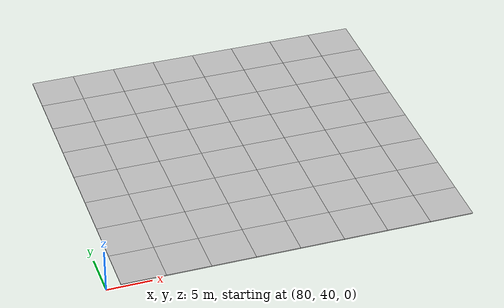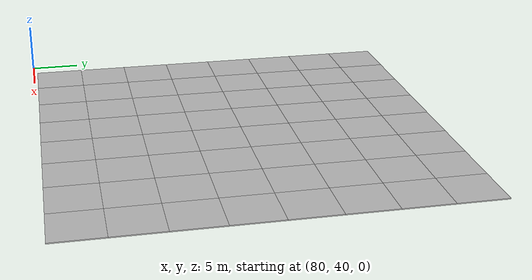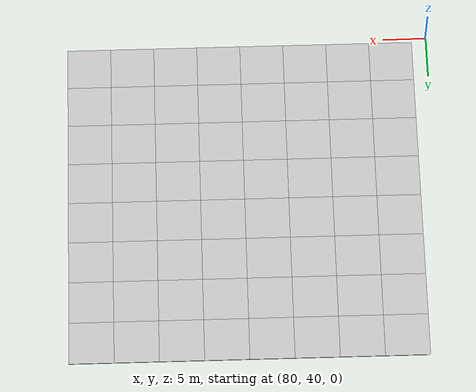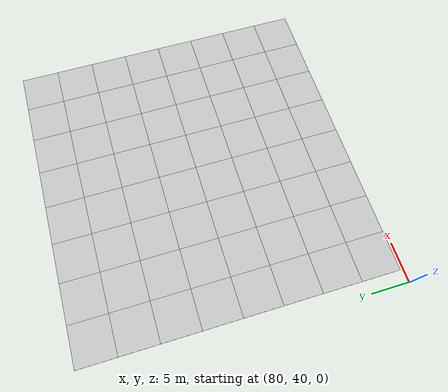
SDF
<sdf version="1.7">
 <world name="default">
  <model name="mud_plane_80x80_6">
   <model name="mud_plane_40x40_1">
    <model name="mud_plane_20x20">
     <model name="mud_plane">
      <static>1</static>
      <link name="link">
       <collision name="collision"><geometry><box><size>10 10 0.1</size></box></geometry></collision>
       <visual name="visual_1">
        <pose>-2.5 2.5 -0.05 0 -0 0</pose>
        <cast_shadows>0</cast_shadows>
        <geometry><box><size>5 5 0.1</size></box></geometry>
        <material>
         <script>
          <uri>model://mud_plane/materials/scripts</uri>
          <uri>model://mud_plane/materials/textures</uri>
          <name>vrc/mud</name>
         </script>
        </material>
       </visual>
       <visual name="visual_2">
        <pose>2.5 2.5 -0.05 0 -0 0</pose>
        <cast_shadows>0</cast_shadows>
        <geometry><box><size>5 5 0.1</size></box></geometry>
        <material>
         <script>
          <uri>model://mud_plane/materials/scripts</uri>
          <uri>model://mud_plane/materials/textures</uri>
          <name>vrc/mud</name>
         </script>
        </material>
       </visual>
       <visual name="visual_3">
        <pose>2.5 -2.5 -0.05 0 -0 0</pose>
        <cast_shadows>0</cast_shadows>
        <geometry><box><size>5 5 0.1</size></box></geometry>
        <material>
         <script>
          <uri>model://mud_plane/materials/scripts</uri>
          <uri>model://mud_plane/materials/textures</uri>
          <name>vrc/mud</name>
         </script>
        </material>
       </visual>
       <visual name="visual_4">
        <pose>-2.5 -2.5 -0.05 0 -0 0</pose>
        <cast_shadows>0</cast_shadows>
        <geometry><box><size>5 5 0.1</size></box></geometry>
        <material>
         <script>
          <uri>model://mud_plane/materials/scripts</uri>
          <uri>model://mud_plane/materials/textures</uri>
          <name>vrc/mud</name>
         </script>
        </material>
       </visual>
      </link>
      <pose>-4.99986 -4.99991 0 0 -0 0</pose>
     </model>
     <model name="mud_plane_0">
      <static>1</static>
      <link name="link">
       <collision name="collision"><geometry><box><size>10 10 0.1</size></box></geometry></collision>
       <visual name="visual_1">
        <pose>-2.5 2.5 -0.05 0 -0 0</pose>
        <cast_shadows>0</cast_shadows>
        <geometry><box><size>5 5 0.1</size></box></geometry>
        <material>
         <script>
          <uri>model://mud_plane/materials/scripts</uri>
          <uri>model://mud_plane/materials/textures</uri>
          <name>vrc/mud</name>
         </script>
        </material>
       </visual>
       <visual name="visual_2">
        <pose>2.5 2.5 -0.05 0 -0 0</pose>
        <cast_shadows>0</cast_shadows>
        <geometry><box><size>5 5 0.1</size></box></geometry>
        <material>
         <script>
          <uri>model://mud_plane/materials/scripts</uri>
          <uri>model://mud_plane/materials/textures</uri>
          <name>vrc/mud</name>
         </script>
        </material>
       </visual>
       <visual name="visual_3">
        <pose>2.5 -2.5 -0.05 0 -0 0</pose>
        <cast_shadows>0</cast_shadows>
        <geometry><box><size>5 5 0.1</size></box></geometry>
        <material>
         <script>
          <uri>model://mud_plane/materials/scripts</uri>
          <uri>model://mud_plane/materials/textures</uri>
          <name>vrc/mud</name>
         </script>
        </material>
       </visual>
       <visual name="visual_4">
        <pose>-2.5 -2.5 -0.05 0 -0 0</pose>
        <cast_shadows>0</cast_shadows>
        <geometry><box><size>5 5 0.1</size></box></geometry>
        <material>
         <script>
          <uri>model://mud_plane/materials/scripts</uri>
          <uri>model://mud_plane/materials/textures</uri>
          <name>vrc/mud</name>
         </script>
        </material>
       </visual>
      </link>
      <pose>-4.99946 4.99954 0 0 -0 0</pose>
     </model>
     <model name="mud_plane_1">
      <static>1</static>
      <link name="link">
       <collision name="collision"><geometry><box><size>10 10 0.1</size></box></geometry></collision>
       <visual name="visual_1">
        <pose>-2.5 2.5 -0.05 0 -0 0</pose>
        <cast_shadows>0</cast_shadows>
        <geometry><box><size>5 5 0.1</size></box></geometry>
        <material>
         <script>
          <uri>model://mud_plane/materials/scripts</uri>
          <uri>model://mud_plane/materials/textures</uri>
          <name>vrc/mud</name>
         </script>
        </material>
       </visual>
       <visual name="visual_2">
        <pose>2.5 2.5 -0.05 0 -0 0</pose>
        <cast_shadows>0</cast_shadows>
        <geometry><box><size>5 5 0.1</size></box></geometry>
        <material>
         <script>
          <uri>model://mud_plane/materials/scripts</uri>
          <uri>model://mud_plane/materials/textures</uri>
          <name>vrc/mud</name>
         </script>
        </material>
       </visual>
       <visual name="visual_3">
        <pose>2.5 -2.5 -0.05 0 -0 0</pose>
        <cast_shadows>0</cast_shadows>
        <geometry><box><size>5 5 0.1</size></box></geometry>
        <material>
         <script>
          <uri>model://mud_plane/materials/scripts</uri>
          <uri>model://mud_plane/materials/textures</uri>
          <name>vrc/mud</name>
         </script>
        </material>
       </visual>
       <visual name="visual_4">
        <pose>-2.5 -2.5 -0.05 0 -0 0</pose>
        <cast_shadows>0</cast_shadows>
        <geometry><box><size>5 5 0.1</size></box></geometry>
        <material>
         <script>
          <uri>model://mud_plane/materials/scripts</uri>
          <uri>model://mud_plane/materials/textures</uri>
          <name>vrc/mud</name>
         </script>
        </material>
       </visual>
      </link>
      <pose>4.99964 -4.99949 0 0 -0 0</pose>
     </model>
     <model name="mud_plane_2">
      <static>1</static>
      <link name="link">
       <collision name="collision"><geometry><box><size>10 10 0.1</size></box></geometry></collision>
       <visual name="visual_1">
        <pose>-2.5 2.5 -0.05 0 -0 0</pose>
        <cast_shadows>0</cast_shadows>
        <geometry><box><size>5 5 0.1</size></box></geometry>
        <material>
         <script>
          <uri>model://mud_plane/materials/scripts</uri>
          <uri>model://mud_plane/materials/textures</uri>
          <name>vrc/mud</name>
         </script>
        </material>
       </visual>
       <visual name="visual_2">
        <pose>2.5 2.5 -0.05 0 -0 0</pose>
        <cast_shadows>0</cast_shadows>
        <geometry><box><size>5 5 0.1</size></box></geometry>
        <material>
         <script>
          <uri>model://mud_plane/materials/scripts</uri>
          <uri>model://mud_plane/materials/textures</uri>
          <name>vrc/mud</name>
         </script>
        </material>
       </visual>
       <visual name="visual_3">
        <pose>2.5 -2.5 -0.05 0 -0 0</pose>
        <cast_shadows>0</cast_shadows>
        <geometry><box><size>5 5 0.1</size></box></geometry>
        <material>
         <script>
          <uri>model://mud_plane/materials/scripts</uri>
          <uri>model://mud_plane/materials/textures</uri>
          <name>vrc/mud</name>
         </script>
        </material>
       </visual>
       <visual name="visual_4">
        <pose>-2.5 -2.5 -0.05 0 -0 0</pose>
        <cast_shadows>0</cast_shadows>
        <geometry><box><size>5 5 0.1</size></box></geometry>
        <material>
         <script>
          <uri>model://mud_plane/materials/scripts</uri>
          <uri>model://mud_plane/materials/textures</uri>
          <name>vrc/mud</name>
         </script>
        </material>
       </visual>
      </link>
      <pose>4.99967 4.99986 0 0 -0 0</pose>
     </model>
     <static>0</static>
     <pose>-9.99895 9.99843 0 0 -0 0</pose>
    </model>
    <model name="mud_plane_20x20_0">
     <model name="mud_plane">
      <static>1</static>
      <link name="link">
       <collision name="collision"><geometry><box><size>10 10 0.1</size></box></geometry></collision>
       <visual name="visual_1">
        <pose>-2.5 2.5 -0.05 0 -0 0</pose>
        <cast_shadows>0</cast_shadows>
        <geometry><box><size>5 5 0.1</size></box></geometry>
        <material>
         <script>
          <uri>model://mud_plane/materials/scripts</uri>
          <uri>model://mud_plane/materials/textures</uri>
          <name>vrc/mud</name>
         </script>
        </material>
       </visual>
       <visual name="visual_2">
        <pose>2.5 2.5 -0.05 0 -0 0</pose>
        <cast_shadows>0</cast_shadows>
        <geometry><box><size>5 5 0.1</size></box></geometry>
        <material>
         <script>
          <uri>model://mud_plane/materials/scripts</uri>
          <uri>model://mud_plane/materials/textures</uri>
          <name>vrc/mud</name>
         </script>
        </material>
       </visual>
       <visual name="visual_3">
        <pose>2.5 -2.5 -0.05 0 -0 0</pose>
        <cast_shadows>0</cast_shadows>
        <geometry><box><size>5 5 0.1</size></box></geometry>
        <material>
         <script>
          <uri>model://mud_plane/materials/scripts</uri>
          <uri>model://mud_plane/materials/textures</uri>
          <name>vrc/mud</name>
         </script>
        </material>
       </visual>
       <visual name="visual_4">
        <pose>-2.5 -2.5 -0.05 0 -0 0</pose>
        <cast_shadows>0</cast_shadows>
        <geometry><box><size>5 5 0.1</size></box></geometry>
        <material>
         <script>
          <uri>model://mud_plane/materials/scripts</uri>
          <uri>model://mud_plane/materials/textures</uri>
          <name>vrc/mud</name>
         </script>
        </material>
       </visual>
      </link>
      <pose>-4.99986 -4.99991 0 0 -0 0</pose>
     </model>
     <model name="mud_plane_0">
      <static>1</static>
      <link name="link">
       <collision name="collision"><geometry><box><size>10 10 0.1</size></box></geometry></collision>
       <visual name="visual_1">
        <pose>-2.5 2.5 -0.05 0 -0 0</pose>
        <cast_shadows>0</cast_shadows>
        <geometry><box><size>5 5 0.1</size></box></geometry>
        <material>
         <script>
          <uri>model://mud_plane/materials/scripts</uri>
          <uri>model://mud_plane/materials/textures</uri>
          <name>vrc/mud</name>
         </script>
        </material>
       </visual>
       <visual name="visual_2">
        <pose>2.5 2.5 -0.05 0 -0 0</pose>
        <cast_shadows>0</cast_shadows>
        <geometry><box><size>5 5 0.1</size></box></geometry>
        <material>
         <script>
          <uri>model://mud_plane/materials/scripts</uri>
          <uri>model://mud_plane/materials/textures</uri>
          <name>vrc/mud</name>
         </script>
        </material>
       </visual>
       <visual name="visual_3">
        <pose>2.5 -2.5 -0.05 0 -0 0</pose>
        <cast_shadows>0</cast_shadows>
        <geometry><box><size>5 5 0.1</size></box></geometry>
        <material>
         <script>
          <uri>model://mud_plane/materials/scripts</uri>
          <uri>model://mud_plane/materials/textures</uri>
          <name>vrc/mud</name>
         </script>
        </material>
       </visual>
       <visual name="visual_4">
        <pose>-2.5 -2.5 -0.05 0 -0 0</pose>
        <cast_shadows>0</cast_shadows>
        <geometry><box><size>5 5 0.1</size></box></geometry>
        <material>
         <script>
          <uri>model://mud_plane/materials/scripts</uri>
          <uri>model://mud_plane/materials/textures</uri>
          <name>vrc/mud</name>
         </script>
        </material>
       </visual>
      </link>
      <pose>-4.99946 4.99954 0 0 -0 0</pose>
     </model>
     <model name="mud_plane_1">
      <static>1</static>
      <link name="link">
       <collision name="collision"><geometry><box><size>10 10 0.1</size></box></geometry></collision>
       <visual name="visual_1">
        <pose>-2.5 2.5 -0.05 0 -0 0</pose>
        <cast_shadows>0</cast_shadows>
        <geometry><box><size>5 5 0.1</size></box></geometry>
        <material>
         <script>
          <uri>model://mud_plane/materials/scripts</uri>
          <uri>model://mud_plane/materials/textures</uri>
          <name>vrc/mud</name>
         </script>
        </material>
       </visual>
       <visual name="visual_2">
        <pose>2.5 2.5 -0.05 0 -0 0</pose>
        <cast_shadows>0</cast_shadows>
        <geometry><box><size>5 5 0.1</size></box></geometry>
        <material>
         <script>
          <uri>model://mud_plane/materials/scripts</uri>
          <uri>model://mud_plane/materials/textures</uri>
          <name>vrc/mud</name>
         </script>
        </material>
       </visual>
       <visual name="visual_3">
        <pose>2.5 -2.5 -0.05 0 -0 0</pose>
        <cast_shadows>0</cast_shadows>
        <geometry><box><size>5 5 0.1</size></box></geometry>
        <material>
         <script>
          <uri>model://mud_plane/materials/scripts</uri>
          <uri>model://mud_plane/materials/textures</uri>
          <name>vrc/mud</name>
         </script>
        </material>
       </visual>
       <visual name="visual_4">
        <pose>-2.5 -2.5 -0.05 0 -0 0</pose>
        <cast_shadows>0</cast_shadows>
        <geometry><box><size>5 5 0.1</size></box></geometry>
        <material>
         <script>
          <uri>model://mud_plane/materials/scripts</uri>
          <uri>model://mud_plane/materials/textures</uri>
          <name>vrc/mud</name>
         </script>
        </material>
       </visual>
      </link>
      <pose>4.99964 -4.99949 0 0 -0 0</pose>
     </model>
     <model name="mud_plane_2">
      <static>1</static>
      <link name="link">
       <collision name="collision"><geometry><box><size>10 10 0.1</size></box></geometry></collision>
       <visual name="visual_1">
        <pose>-2.5 2.5 -0.05 0 -0 0</pose>
        <cast_shadows>0</cast_shadows>
        <geometry><box><size>5 5 0.1</size></box></geometry>
        <material>
         <script>
          <uri>model://mud_plane/materials/scripts</uri>
          <uri>model://mud_plane/materials/textures</uri>
          <name>vrc/mud</name>
         </script>
        </material>
       </visual>
       <visual name="visual_2">
        <pose>2.5 2.5 -0.05 0 -0 0</pose>
        <cast_shadows>0</cast_shadows>
        <geometry><box><size>5 5 0.1</size></box></geometry>
        <material>
         <script>
          <uri>model://mud_plane/materials/scripts</uri>
          <uri>model://mud_plane/materials/textures</uri>
          <name>vrc/mud</name>
         </script>
        </material>
       </visual>
       <visual name="visual_3">
        <pose>2.5 -2.5 -0.05 0 -0 0</pose>
        <cast_shadows>0</cast_shadows>
        <geometry><box><size>5 5 0.1</size></box></geometry>
        <material>
         <script>
          <uri>model://mud_plane/materials/scripts</uri>
          <uri>model://mud_plane/materials/textures</uri>
          <name>vrc/mud</name>
         </script>
        </material>
       </visual>
       <visual name="visual_4">
        <pose>-2.5 -2.5 -0.05 0 -0 0</pose>
        <cast_shadows>0</cast_shadows>
        <geometry><box><size>5 5 0.1</size></box></geometry>
        <material>
         <script>
          <uri>model://mud_plane/materials/scripts</uri>
          <uri>model://mud_plane/materials/textures</uri>
          <name>vrc/mud</name>
         </script>
        </material>
       </visual>
      </link>
      <pose>4.99967 4.99986 0 0 -0 0</pose>
     </model>
     <static>0</static>
     <pose>9.99933 9.9997 0 0 -0 0</pose>
    </model>
    <model name="mud_plane_20x20_1">
     <model name="mud_plane">
      <static>1</static>
      <link name="link">
       <collision name="collision"><geometry><box><size>10 10 0.1</size></box></geometry></collision>
       <visual name="visual_1">
        <pose>-2.5 2.5 -0.05 0 -0 0</pose>
        <cast_shadows>0</cast_shadows>
        <geometry><box><size>5 5 0.1</size></box></geometry>
        <material>
         <script>
          <uri>model://mud_plane/materials/scripts</uri>
          <uri>model://mud_plane/materials/textures</uri>
          <name>vrc/mud</name>
         </script>
        </material>
       </visual>
       <visual name="visual_2">
        <pose>2.5 2.5 -0.05 0 -0 0</pose>
        <cast_shadows>0</cast_shadows>
        <geometry><box><size>5 5 0.1</size></box></geometry>
        <material>
         <script>
          <uri>model://mud_plane/materials/scripts</uri>
          <uri>model://mud_plane/materials/textures</uri>
          <name>vrc/mud</name>
         </script>
        </material>
       </visual>
       <visual name="visual_3">
        <pose>2.5 -2.5 -0.05 0 -0 0</pose>
        <cast_shadows>0</cast_shadows>
        <geometry><box><size>5 5 0.1</size></box></geometry>
        <material>
         <script>
          <uri>model://mud_plane/materials/scripts</uri>
          <uri>model://mud_plane/materials/textures</uri>
          <name>vrc/mud</name>
         </script>
        </material>
       </visual>
       <visual name="visual_4">
        <pose>-2.5 -2.5 -0.05 0 -0 0</pose>
        <cast_shadows>0</cast_shadows>
        <geometry><box><size>5 5 0.1</size></box></geometry>
        <material>
         <script>
          <uri>model://mud_plane/materials/scripts</uri>
          <uri>model://mud_plane/materials/textures</uri>
          <name>vrc/mud</name>
         </script>
        </material>
       </visual>
      </link>
      <pose>-4.99986 -4.99991 0 0 -0 0</pose>
     </model>
     <model name="mud_plane_0">
      <static>1</static>
      <link name="link">
       <collision name="collision"><geometry><box><size>10 10 0.1</size></box></geometry></collision>
       <visual name="visual_1">
        <pose>-2.5 2.5 -0.05 0 -0 0</pose>
        <cast_shadows>0</cast_shadows>
        <geometry><box><size>5 5 0.1</size></box></geometry>
        <material>
         <script>
          <uri>model://mud_plane/materials/scripts</uri>
          <uri>model://mud_plane/materials/textures</uri>
          <name>vrc/mud</name>
         </script>
        </material>
       </visual>
       <visual name="visual_2">
        <pose>2.5 2.5 -0.05 0 -0 0</pose>
        <cast_shadows>0</cast_shadows>
        <geometry><box><size>5 5 0.1</size></box></geometry>
        <material>
         <script>
          <uri>model://mud_plane/materials/scripts</uri>
          <uri>model://mud_plane/materials/textures</uri>
          <name>vrc/mud</name>
         </script>
        </material>
       </visual>
       <visual name="visual_3">
        <pose>2.5 -2.5 -0.05 0 -0 0</pose>
        <cast_shadows>0</cast_shadows>
        <geometry><box><size>5 5 0.1</size></box></geometry>
        <material>
         <script>
          <uri>model://mud_plane/materials/scripts</uri>
          <uri>model://mud_plane/materials/textures</uri>
          <name>vrc/mud</name>
         </script>
        </material>
       </visual>
       <visual name="visual_4">
        <pose>-2.5 -2.5 -0.05 0 -0 0</pose>
        <cast_shadows>0</cast_shadows>
        <geometry><box><size>5 5 0.1</size></box></geometry>
        <material>
         <script>
          <uri>model://mud_plane/materials/scripts</uri>
          <uri>model://mud_plane/materials/textures</uri>
          <name>vrc/mud</name>
         </script>
        </material>
       </visual>
      </link>
      <pose>-4.99946 4.99954 0 0 -0 0</pose>
     </model>
     <model name="mud_plane_1">
      <static>1</static>
      <link name="link">
       <collision name="collision"><geometry><box><size>10 10 0.1</size></box></geometry></collision>
       <visual name="visual_1">
        <pose>-2.5 2.5 -0.05 0 -0 0</pose>
        <cast_shadows>0</cast_shadows>
        <geometry><box><size>5 5 0.1</size></box></geometry>
        <material>
         <script>
          <uri>model://mud_plane/materials/scripts</uri>
          <uri>model://mud_plane/materials/textures</uri>
          <name>vrc/mud</name>
         </script>
        </material>
       </visual>
       <visual name="visual_2">
        <pose>2.5 2.5 -0.05 0 -0 0</pose>
        <cast_shadows>0</cast_shadows>
        <geometry><box><size>5 5 0.1</size></box></geometry>
        <material>
         <script>
          <uri>model://mud_plane/materials/scripts</uri>
          <uri>model://mud_plane/materials/textures</uri>
          <name>vrc/mud</name>
         </script>
        </material>
       </visual>
       <visual name="visual_3">
        <pose>2.5 -2.5 -0.05 0 -0 0</pose>
        <cast_shadows>0</cast_shadows>
        <geometry><box><size>5 5 0.1</size></box></geometry>
        <material>
         <script>
          <uri>model://mud_plane/materials/scripts</uri>
          <uri>model://mud_plane/materials/textures</uri>
          <name>vrc/mud</name>
         </script>
        </material>
       </visual>
       <visual name="visual_4">
        <pose>-2.5 -2.5 -0.05 0 -0 0</pose>
        <cast_shadows>0</cast_shadows>
        <geometry><box><size>5 5 0.1</size></box></geometry>
        <material>
         <script>
          <uri>model://mud_plane/materials/scripts</uri>
          <uri>model://mud_plane/materials/textures</uri>
          <name>vrc/mud</name>
         </script>
        </material>
       </visual>
      </link>
      <pose>4.99964 -4.99949 0 0 -0 0</pose>
     </model>
     <model name="mud_plane_2">
      <static>1</static>
      <link name="link">
       <collision name="collision"><geometry><box><size>10 10 0.1</size></box></geometry></collision>
       <visual name="visual_1">
        <pose>-2.5 2.5 -0.05 0 -0 0</pose>
        <cast_shadows>0</cast_shadows>
        <geometry><box><size>5 5 0.1</size></box></geometry>
        <material>
         <script>
          <uri>model://mud_plane/materials/scripts</uri>
          <uri>model://mud_plane/materials/textures</uri>
          <name>vrc/mud</name>
         </script>
        </material>
       </visual>
       <visual name="visual_2">
        <pose>2.5 2.5 -0.05 0 -0 0</pose>
        <cast_shadows>0</cast_shadows>
        <geometry><box><size>5 5 0.1</size></box></geometry>
        <material>
         <script>
          <uri>model://mud_plane/materials/scripts</uri>
          <uri>model://mud_plane/materials/textures</uri>
          <name>vrc/mud</name>
         </script>
        </material>
       </visual>
       <visual name="visual_3">
        <pose>2.5 -2.5 -0.05 0 -0 0</pose>
        <cast_shadows>0</cast_shadows>
        <geometry><box><size>5 5 0.1</size></box></geometry>
        <material>
         <script>
          <uri>model://mud_plane/materials/scripts</uri>
          <uri>model://mud_plane/materials/textures</uri>
          <name>vrc/mud</name>
         </script>
        </material>
       </visual>
       <visual name="visual_4">
        <pose>-2.5 -2.5 -0.05 0 -0 0</pose>
        <cast_shadows>0</cast_shadows>
        <geometry><box><size>5 5 0.1</size></box></geometry>
        <material>
         <script>
          <uri>model://mud_plane/materials/scripts</uri>
          <uri>model://mud_plane/materials/textures</uri>
          <name>vrc/mud</name>
         </script>
        </material>
       </visual>
      </link>
      <pose>4.99967 4.99986 0 0 -0 0</pose>
     </model>
     <static>0</static>
     <pose>9.9993 -9.99877 0 0 -0 0</pose>
    </model>
    <model name="mud_plane_20x20_2">
     <model name="mud_plane">
      <static>1</static>
      <link name="link">
       <collision name="collision"><geometry><box><size>10 10 0.1</size></box></geometry></collision>
       <visual name="visual_1">
        <pose>-2.5 2.5 -0.05 0 -0 0</pose>
        <cast_shadows>0</cast_shadows>
        <geometry><box><size>5 5 0.1</size></box></geometry>
        <material>
         <script>
          <uri>model://mud_plane/materials/scripts</uri>
          <uri>model://mud_plane/materials/textures</uri>
          <name>vrc/mud</name>
         </script>
        </material>
       </visual>
       <visual name="visual_2">
        <pose>2.5 2.5 -0.05 0 -0 0</pose>
        <cast_shadows>0</cast_shadows>
        <geometry><box><size>5 5 0.1</size></box></geometry>
        <material>
         <script>
          <uri>model://mud_plane/materials/scripts</uri>
          <uri>model://mud_plane/materials/textures</uri>
          <name>vrc/mud</name>
         </script>
        </material>
       </visual>
       <visual name="visual_3">
        <pose>2.5 -2.5 -0.05 0 -0 0</pose>
        <cast_shadows>0</cast_shadows>
        <geometry><box><size>5 5 0.1</size></box></geometry>
        <material>
         <script>
          <uri>model://mud_plane/materials/scripts</uri>
          <uri>model://mud_plane/materials/textures</uri>
          <name>vrc/mud</name>
         </script>
        </material>
       </visual>
       <visual name="visual_4">
        <pose>-2.5 -2.5 -0.05 0 -0 0</pose>
        <cast_shadows>0</cast_shadows>
        <geometry><box><size>5 5 0.1</size></box></geometry>
        <material>
         <script>
          <uri>model://mud_plane/materials/scripts</uri>
          <uri>model://mud_plane/materials/textures</uri>
          <name>vrc/mud</name>
         </script>
        </material>
       </visual>
      </link>
      <pose>-4.99986 -4.99991 0 0 -0 0</pose>
     </model>
     <model name="mud_plane_0">
      <static>1</static>
      <link name="link">
       <collision name="collision"><geometry><box><size>10 10 0.1</size></box></geometry></collision>
       <visual name="visual_1">
        <pose>-2.5 2.5 -0.05 0 -0 0</pose>
        <cast_shadows>0</cast_shadows>
        <geometry><box><size>5 5 0.1</size></box></geometry>
        <material>
         <script>
          <uri>model://mud_plane/materials/scripts</uri>
          <uri>model://mud_plane/materials/textures</uri>
          <name>vrc/mud</name>
         </script>
        </material>
       </visual>
       <visual name="visual_2">
        <pose>2.5 2.5 -0.05 0 -0 0</pose>
        <cast_shadows>0</cast_shadows>
        <geometry><box><size>5 5 0.1</size></box></geometry>
        <material>
         <script>
          <uri>model://mud_plane/materials/scripts</uri>
          <uri>model://mud_plane/materials/textures</uri>
          <name>vrc/mud</name>
         </script>
        </material>
       </visual>
       <visual name="visual_3">
        <pose>2.5 -2.5 -0.05 0 -0 0</pose>
        <cast_shadows>0</cast_shadows>
        <geometry><box><size>5 5 0.1</size></box></geometry>
        <material>
         <script>
          <uri>model://mud_plane/materials/scripts</uri>
          <uri>model://mud_plane/materials/textures</uri>
          <name>vrc/mud</name>
         </script>
        </material>
       </visual>
       <visual name="visual_4">
        <pose>-2.5 -2.5 -0.05 0 -0 0</pose>
        <cast_shadows>0</cast_shadows>
        <geometry><box><size>5 5 0.1</size></box></geometry>
        <material>
         <script>
          <uri>model://mud_plane/materials/scripts</uri>
          <uri>model://mud_plane/materials/textures</uri>
          <name>vrc/mud</name>
         </script>
        </material>
       </visual>
      </link>
      <pose>-4.99946 4.99954 0 0 -0 0</pose>
     </model>
     <model name="mud_plane_1">
      <static>1</static>
      <link name="link">
       <collision name="collision"><geometry><box><size>10 10 0.1</size></box></geometry></collision>
       <visual name="visual_1">
        <pose>-2.5 2.5 -0.05 0 -0 0</pose>
        <cast_shadows>0</cast_shadows>
        <geometry><box><size>5 5 0.1</size></box></geometry>
        <material>
         <script>
          <uri>model://mud_plane/materials/scripts</uri>
          <uri>model://mud_plane/materials/textures</uri>
          <name>vrc/mud</name>
         </script>
        </material>
       </visual>
       <visual name="visual_2">
        <pose>2.5 2.5 -0.05 0 -0 0</pose>
        <cast_shadows>0</cast_shadows>
        <geometry><box><size>5 5 0.1</size></box></geometry>
        <material>
         <script>
          <uri>model://mud_plane/materials/scripts</uri>
          <uri>model://mud_plane/materials/textures</uri>
          <name>vrc/mud</name>
         </script>
        </material>
       </visual>
       <visual name="visual_3">
        <pose>2.5 -2.5 -0.05 0 -0 0</pose>
        <cast_shadows>0</cast_shadows>
        <geometry><box><size>5 5 0.1</size></box></geometry>
        <material>
         <script>
          <uri>model://mud_plane/materials/scripts</uri>
          <uri>model://mud_plane/materials/textures</uri>
          <name>vrc/mud</name>
         </script>
        </material>
       </visual>
       <visual name="visual_4">
        <pose>-2.5 -2.5 -0.05 0 -0 0</pose>
        <cast_shadows>0</cast_shadows>
        <geometry><box><size>5 5 0.1</size></box></geometry>
        <material>
         <script>
          <uri>model://mud_plane/materials/scripts</uri>
          <uri>model://mud_plane/materials/textures</uri>
          <name>vrc/mud</name>
         </script>
        </material>
       </visual>
      </link>
      <pose>4.99964 -4.99949 0 0 -0 0</pose>
     </model>
     <model name="mud_plane_2">
      <static>1</static>
      <link name="link">
       <collision name="collision"><geometry><box><size>10 10 0.1</size></box></geometry></collision>
       <visual name="visual_1">
        <pose>-2.5 2.5 -0.05 0 -0 0</pose>
        <cast_shadows>0</cast_shadows>
        <geometry><box><size>5 5 0.1</size></box></geometry>
        <material>
         <script>
          <uri>model://mud_plane/materials/scripts</uri>
          <uri>model://mud_plane/materials/textures</uri>
          <name>vrc/mud</name>
         </script>
        </material>
       </visual>
       <visual name="visual_2">
        <pose>2.5 2.5 -0.05 0 -0 0</pose>
        <cast_shadows>0</cast_shadows>
        <geometry><box><size>5 5 0.1</size></box></geometry>
        <material>
         <script>
          <uri>model://mud_plane/materials/scripts</uri>
          <uri>model://mud_plane/materials/textures</uri>
          <name>vrc/mud</name>
         </script>
        </material>
       </visual>
       <visual name="visual_3">
        <pose>2.5 -2.5 -0.05 0 -0 0</pose>
        <cast_shadows>0</cast_shadows>
        <geometry><box><size>5 5 0.1</size></box></geometry>
        <material>
         <script>
          <uri>model://mud_plane/materials/scripts</uri>
          <uri>model://mud_plane/materials/textures</uri>
          <name>vrc/mud</name>
         </script>
        </material>
       </visual>
       <visual name="visual_4">
        <pose>-2.5 -2.5 -0.05 0 -0 0</pose>
        <cast_shadows>0</cast_shadows>
        <geometry><box><size>5 5 0.1</size></box></geometry>
        <material>
         <script>
          <uri>model://mud_plane/materials/scripts</uri>
          <uri>model://mud_plane/materials/textures</uri>
          <name>vrc/mud</name>
         </script>
        </material>
       </visual>
      </link>
      <pose>4.99967 4.99986 0 0 -0 0</pose>
     </model>
     <static>0</static>
     <pose>-9.99969 -9.99935 0 0 -0 0</pose>
    </model>
    <static>0</static>
    <pose>-19.9982 19.9977 0 0 -0 0</pose>
   </model>
   <static>0</static>
   <pose>121.689 40.3973 0 0 -0 0</pose>
  </model>
 </world>
</sdf>
